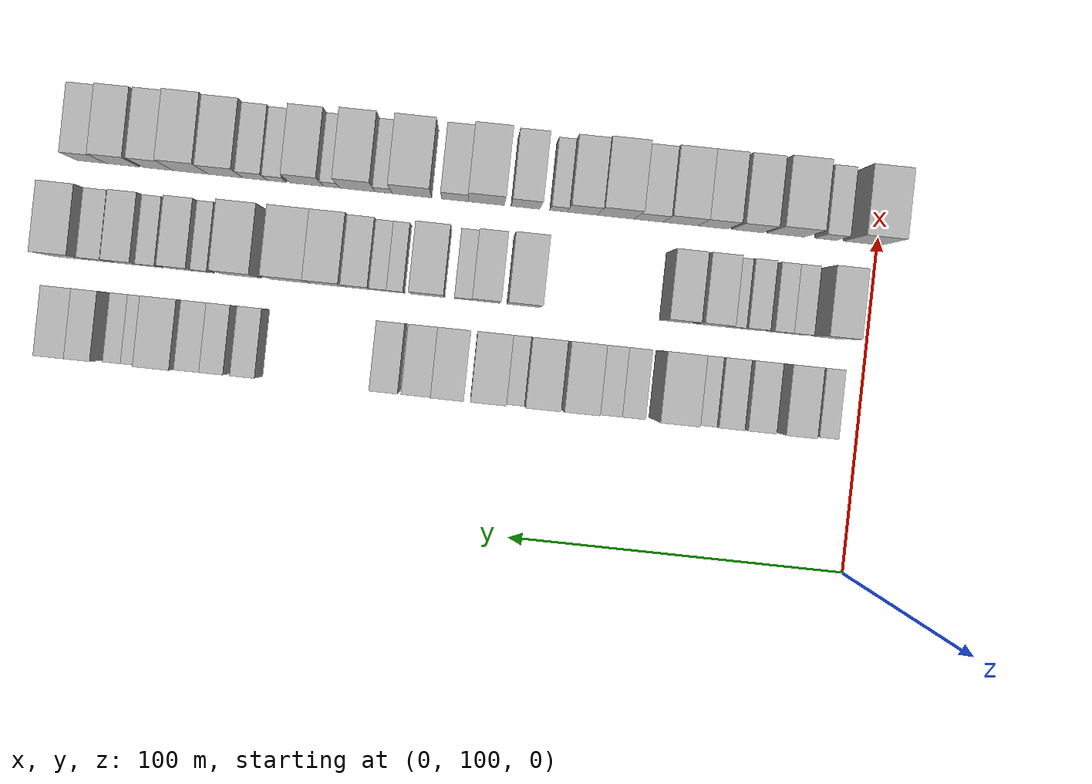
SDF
<sdf version="1.6">
 <world name="default">
  <model name="building_51">
   <static>1</static>
   <pose>50.0000 111.6134 0 0.000000 0.000000 0.000000</pose>
   <link name="link">
    <pose>0 0 6.00 0 0 0</pose>
    <collision name="collision"><geometry><box><size>20.0000 5.5561 12.0000</size></box></geometry></collision>
    <visual name="visual">
     <cast_shadows>0</cast_shadows>
     <geometry><box><size>20.0000 5.5561 12.0000</size></box></geometry>
     <material>
      <script>
       <uri>model://HANNAS_wall/materials/scripts</uri>
       <uri>model://HANNAS_wall/materials/textures</uri>
       <name>vrc/HANNAS_wall</name>
      </script>
     </material>
    </visual>
   </link>
  </model>
  <model name="building_52">
   <static>1</static>
   <pose>50.0000 121.8254 0 0.000000 0.000000 0.000000</pose>
   <link name="link">
    <pose>0 0 10.50 0 0 0</pose>
    <collision name="collision"><geometry><box><size>20.0000 8.8678 21.0000</size></box></geometry></collision>
    <visual name="visual">
     <cast_shadows>0</cast_shadows>
     <geometry><box><size>20.0000 8.8678 21.0000</size></box></geometry>
     <material>
      <script>
       <uri>model://HANNAS_wall/materials/scripts</uri>
       <uri>model://HANNAS_wall/materials/textures</uri>
       <name>vrc/HANNAS_wall</name>
      </script>
     </material>
    </visual>
   </link>
  </model>
  <model name="building_53">
   <static>1</static>
   <pose>50.0000 132.2861 0 0.000000 0.000000 0.000000</pose>
   <link name="link">
    <pose>0 0 9.00 0 0 0</pose>
    <collision name="collision"><geometry><box><size>20.0000 8.0538 18.0000</size></box></geometry></collision>
    <visual name="visual">
     <cast_shadows>0</cast_shadows>
     <geometry><box><size>20.0000 8.0538 18.0000</size></box></geometry>
     <material>
      <script>
       <uri>model://HANNAS_wall/materials/scripts</uri>
       <uri>model://HANNAS_wall/materials/textures</uri>
       <name>vrc/HANNAS_wall</name>
      </script>
     </material>
    </visual>
   </link>
  </model>
  <model name="building_54">
   <static>1</static>
   <pose>50.0000 140.9783 0 0.000000 0.000000 0.000000</pose>
   <link name="link">
    <pose>0 0 9.00 0 0 0</pose>
    <collision name="collision"><geometry><box><size>20.0000 7.3305 18.0000</size></box></geometry></collision>
    <visual name="visual">
     <cast_shadows>0</cast_shadows>
     <geometry><box><size>20.0000 7.3305 18.0000</size></box></geometry>
     <material>
      <script>
       <uri>model://HANNAS_wall/materials/scripts</uri>
       <uri>model://HANNAS_wall/materials/textures</uri>
       <name>vrc/HANNAS_wall</name>
      </script>
     </material>
    </visual>
   </link>
  </model>
  <model name="building_55">
   <static>1</static>
   <pose>50.0000 147.8227 0 0.000000 0.000000 0.000000</pose>
   <link name="link">
    <pose>0 0 7.50 0 0 0</pose>
    <collision name="collision"><geometry><box><size>20.0000 6.3583 15.0000</size></box></geometry></collision>
    <visual name="visual">
     <cast_shadows>0</cast_shadows>
     <geometry><box><size>20.0000 6.3583 15.0000</size></box></geometry>
     <material>
      <script>
       <uri>model://HANNAS_wall/materials/scripts</uri>
       <uri>model://HANNAS_wall/materials/textures</uri>
       <name>vrc/HANNAS_wall</name>
      </script>
     </material>
    </visual>
   </link>
  </model>
  <model name="building_56">
   <static>1</static>
   <pose>50.0000 156.5805 0 0.000000 0.000000 0.000000</pose>
   <link name="link">
    <pose>0 0 12.00 0 0 0</pose>
    <collision name="collision"><geometry><box><size>20.0000 11.1573 24.0000</size></box></geometry></collision>
    <visual name="visual">
     <cast_shadows>0</cast_shadows>
     <geometry><box><size>20.0000 11.1573 24.0000</size></box></geometry>
     <material>
      <script>
       <uri>model://HANNAS_wall/materials/scripts</uri>
       <uri>model://HANNAS_wall/materials/textures</uri>
       <name>vrc/HANNAS_wall</name>
      </script>
     </material>
    </visual>
   </link>
  </model>
  <model name="building_57">
   <static>1</static>
   <pose>50.0000 168.4880 0 0.000000 0.000000 0.000000</pose>
   <link name="link">
    <pose>0 0 7.50 0 0 0</pose>
    <collision name="collision"><geometry><box><size>20.0000 6.6577 15.0000</size></box></geometry></collision>
    <visual name="visual">
     <cast_shadows>0</cast_shadows>
     <geometry><box><size>20.0000 6.6577 15.0000</size></box></geometry>
     <material>
      <script>
       <uri>model://HANNAS_wall/materials/scripts</uri>
       <uri>model://HANNAS_wall/materials/textures</uri>
       <name>vrc/HANNAS_wall</name>
      </script>
     </material>
    </visual>
   </link>
  </model>
  <model name="building_58">
   <static>1</static>
   <pose>50.0000 175.2801 0 0.000000 0.000000 0.000000</pose>
   <link name="link">
    <pose>0 0 7.50 0 0 0</pose>
    <collision name="collision"><geometry><box><size>20.0000 6.9265 15.0000</size></box></geometry></collision>
    <visual name="visual">
     <cast_shadows>0</cast_shadows>
     <geometry><box><size>20.0000 6.9265 15.0000</size></box></geometry>
     <material>
      <script>
       <uri>model://HANNAS_wall/materials/scripts</uri>
       <uri>model://HANNAS_wall/materials/textures</uri>
       <name>vrc/HANNAS_wall</name>
      </script>
     </material>
    </visual>
   </link>
  </model>
  <model name="building_59">
   <static>1</static>
   <pose>50.0000 183.7782 0 0.000000 0.000000 0.000000</pose>
   <link name="link">
    <pose>0 0 10.50 0 0 0</pose>
    <collision name="collision"><geometry><box><size>20.0000 10.0697 21.0000</size></box></geometry></collision>
    <visual name="visual">
     <cast_shadows>0</cast_shadows>
     <geometry><box><size>20.0000 10.0697 21.0000</size></box></geometry>
     <material>
      <script>
       <uri>model://HANNAS_wall/materials/scripts</uri>
       <uri>model://HANNAS_wall/materials/textures</uri>
       <name>vrc/HANNAS_wall</name>
      </script>
     </material>
    </visual>
   </link>
  </model>
  <model name="building_60">
   <static>1</static>
   <pose>50.0000 194.8084 0 0.000000 0.000000 0.000000</pose>
   <link name="link">
    <pose>0 0 10.50 0 0 0</pose>
    <collision name="collision"><geometry><box><size>20.0000 9.9906 21.0000</size></box></geometry></collision>
    <visual name="visual">
     <cast_shadows>0</cast_shadows>
     <geometry><box><size>20.0000 9.9906 21.0000</size></box></geometry>
     <material>
      <script>
       <uri>model://HANNAS_wall/materials/scripts</uri>
       <uri>model://HANNAS_wall/materials/textures</uri>
       <name>vrc/HANNAS_wall</name>
      </script>
     </material>
    </visual>
   </link>
  </model>
  <model name="building_61">
   <static>1</static>
   <pose>50.0000 202.5305 0 0.000000 0.000000 0.000000</pose>
   <link name="link">
    <pose>0 0 6.00 0 0 0</pose>
    <collision name="collision"><geometry><box><size>20.0000 5.4536 12.0000</size></box></geometry></collision>
    <visual name="visual">
     <cast_shadows>0</cast_shadows>
     <geometry><box><size>20.0000 5.4536 12.0000</size></box></geometry>
     <material>
      <script>
       <uri>model://HANNAS_wall/materials/scripts</uri>
       <uri>model://HANNAS_wall/materials/textures</uri>
       <name>vrc/HANNAS_wall</name>
      </script>
     </material>
    </visual>
   </link>
  </model>
  <model name="building_62">
   <static>1</static>
   <pose>50.0000 210.3117 0 0.000000 0.000000 0.000000</pose>
   <link name="link">
    <pose>0 0 10.50 0 0 0</pose>
    <collision name="collision"><geometry><box><size>20.0000 10.1088 21.0000</size></box></geometry></collision>
    <visual name="visual">
     <cast_shadows>0</cast_shadows>
     <geometry><box><size>20.0000 10.1088 21.0000</size></box></geometry>
     <material>
      <script>
       <uri>model://HANNAS_wall/materials/scripts</uri>
       <uri>model://HANNAS_wall/materials/textures</uri>
       <name>vrc/HANNAS_wall</name>
      </script>
     </material>
    </visual>
   </link>
  </model>
  <model name="building_63">
   <static>1</static>
   <pose>50.0000 222.0658 0 0.000000 0.000000 0.000000</pose>
   <link name="link">
    <pose>0 0 10.50 0 0 0</pose>
    <collision name="collision"><geometry><box><size>20.0000 9.3994 21.0000</size></box></geometry></collision>
    <visual name="visual">
     <cast_shadows>0</cast_shadows>
     <geometry><box><size>20.0000 9.3994 21.0000</size></box></geometry>
     <material>
      <script>
       <uri>model://HANNAS_wall/materials/scripts</uri>
       <uri>model://HANNAS_wall/materials/textures</uri>
       <name>vrc/HANNAS_wall</name>
      </script>
     </material>
    </visual>
   </link>
  </model>
  <model name="building_64">
   <static>1</static>
   <pose>50.0000 230.9824 0 0.000000 0.000000 0.000000</pose>
   <link name="link">
    <pose>0 0 9.00 0 0 0</pose>
    <collision name="collision"><geometry><box><size>20.0000 8.4338 18.0000</size></box></geometry></collision>
    <visual name="visual">
     <cast_shadows>0</cast_shadows>
     <geometry><box><size>20.0000 8.4338 18.0000</size></box></geometry>
     <material>
      <script>
       <uri>model://HANNAS_wall/materials/scripts</uri>
       <uri>model://HANNAS_wall/materials/textures</uri>
       <name>vrc/HANNAS_wall</name>
      </script>
     </material>
    </visual>
   </link>
  </model>
  <model name="building_65">
   <static>1</static>
   <pose>50.0000 240.2731 0 0.000000 0.000000 0.000000</pose>
   <link name="link">
    <pose>0 0 9.00 0 0 0</pose>
    <collision name="collision"><geometry><box><size>20.0000 8.1475 18.0000</size></box></geometry></collision>
    <visual name="visual">
     <cast_shadows>0</cast_shadows>
     <geometry><box><size>20.0000 8.1475 18.0000</size></box></geometry>
     <material>
      <script>
       <uri>model://HANNAS_wall/materials/scripts</uri>
       <uri>model://HANNAS_wall/materials/textures</uri>
       <name>vrc/HANNAS_wall</name>
      </script>
     </material>
    </visual>
   </link>
  </model>
  <model name="building_66">
   <static>1</static>
   <pose>50.0000 280.9391 0 0.000000 0.000000 0.000000</pose>
   <link name="link">
    <pose>0 0 7.50 0 0 0</pose>
    <collision name="collision"><geometry><box><size>20.0000 7.0615 15.0000</size></box></geometry></collision>
    <visual name="visual">
     <cast_shadows>0</cast_shadows>
     <geometry><box><size>20.0000 7.0615 15.0000</size></box></geometry>
     <material>
      <script>
       <uri>model://HANNAS_wall/materials/scripts</uri>
       <uri>model://HANNAS_wall/materials/textures</uri>
       <name>vrc/HANNAS_wall</name>
      </script>
     </material>
    </visual>
   </link>
  </model>
  <model name="building_67">
   <static>1</static>
   <pose>50.0000 289.9208 0 0.000000 0.000000 0.000000</pose>
   <link name="link">
    <pose>0 0 7.50 0 0 0</pose>
    <collision name="collision"><geometry><box><size>20.0000 6.9018 15.0000</size></box></geometry></collision>
    <visual name="visual">
     <cast_shadows>0</cast_shadows>
     <geometry><box><size>20.0000 6.9018 15.0000</size></box></geometry>
     <material>
      <script>
       <uri>model://HANNAS_wall/materials/scripts</uri>
       <uri>model://HANNAS_wall/materials/textures</uri>
       <name>vrc/HANNAS_wall</name>
      </script>
     </material>
    </visual>
   </link>
  </model>
  <model name="building_68">
   <static>1</static>
   <pose>50.0000 296.9847 0 0.000000 0.000000 0.000000</pose>
   <link name="link">
    <pose>0 0 7.50 0 0 0</pose>
    <collision name="collision"><geometry><box><size>20.0000 7.2260 15.0000</size></box></geometry></collision>
    <visual name="visual">
     <cast_shadows>0</cast_shadows>
     <geometry><box><size>20.0000 7.2260 15.0000</size></box></geometry>
     <material>
      <script>
       <uri>model://HANNAS_wall/materials/scripts</uri>
       <uri>model://HANNAS_wall/materials/textures</uri>
       <name>vrc/HANNAS_wall</name>
      </script>
     </material>
    </visual>
   </link>
  </model>
  <model name="building_69">
   <static>1</static>
   <pose>50.0000 305.7222 0 0.000000 0.000000 0.000000</pose>
   <link name="link">
    <pose>0 0 10.50 0 0 0</pose>
    <collision name="collision"><geometry><box><size>20.0000 10.2491 21.0000</size></box></geometry></collision>
    <visual name="visual">
     <cast_shadows>0</cast_shadows>
     <geometry><box><size>20.0000 10.2491 21.0000</size></box></geometry>
     <material>
      <script>
       <uri>model://HANNAS_wall/materials/scripts</uri>
       <uri>model://HANNAS_wall/materials/textures</uri>
       <name>vrc/HANNAS_wall</name>
      </script>
     </material>
    </visual>
   </link>
  </model>
  <model name="building_70">
   <static>1</static>
   <pose>50.0000 313.7695 0 0.000000 0.000000 0.000000</pose>
   <link name="link">
    <pose>0 0 6.00 0 0 0</pose>
    <collision name="collision"><geometry><box><size>20.0000 5.8454 12.0000</size></box></geometry></collision>
    <visual name="visual">
     <cast_shadows>0</cast_shadows>
     <geometry><box><size>20.0000 5.8454 12.0000</size></box></geometry>
     <material>
      <script>
       <uri>model://HANNAS_wall/materials/scripts</uri>
       <uri>model://HANNAS_wall/materials/textures</uri>
       <name>vrc/HANNAS_wall</name>
      </script>
     </material>
    </visual>
   </link>
  </model>
  <model name="building_71">
   <static>1</static>
   <pose>50.0000 319.2532 0 0.000000 0.000000 0.000000</pose>
   <link name="link">
    <pose>0 0 6.00 0 0 0</pose>
    <collision name="collision"><geometry><box><size>20.0000 5.1220 12.0000</size></box></geometry></collision>
    <visual name="visual">
     <cast_shadows>0</cast_shadows>
     <geometry><box><size>20.0000 5.1220 12.0000</size></box></geometry>
     <material>
      <script>
       <uri>model://HANNAS_wall/materials/scripts</uri>
       <uri>model://HANNAS_wall/materials/textures</uri>
       <name>vrc/HANNAS_wall</name>
      </script>
     </material>
    </visual>
   </link>
  </model>
  <model name="building_72">
   <static>1</static>
   <pose>50.0000 327.5269 0 0.000000 0.000000 0.000000</pose>
   <link name="link">
    <pose>0 0 9.00 0 0 0</pose>
    <collision name="collision"><geometry><box><size>20.0000 7.4254 18.0000</size></box></geometry></collision>
    <visual name="visual">
     <cast_shadows>0</cast_shadows>
     <geometry><box><size>20.0000 7.4254 18.0000</size></box></geometry>
     <material>
      <script>
       <uri>model://HANNAS_wall/materials/scripts</uri>
       <uri>model://HANNAS_wall/materials/textures</uri>
       <name>vrc/HANNAS_wall</name>
      </script>
     </material>
    </visual>
   </link>
  </model>
  <model name="building_73">
   <static>1</static>
   <pose>50.0000 335.5805 0 0.000000 0.000000 0.000000</pose>
   <link name="link">
    <pose>0 0 9.00 0 0 0</pose>
    <collision name="collision"><geometry><box><size>20.0000 8.6818 18.0000</size></box></geometry></collision>
    <visual name="visual">
     <cast_shadows>0</cast_shadows>
     <geometry><box><size>20.0000 8.6818 18.0000</size></box></geometry>
     <material>
      <script>
       <uri>model://HANNAS_wall/materials/scripts</uri>
       <uri>model://HANNAS_wall/materials/textures</uri>
       <name>vrc/HANNAS_wall</name>
      </script>
     </material>
    </visual>
   </link>
  </model>
  <model name="building_121">
   <static>1</static>
   <pose>79.0000 112.3462 0 0.000000 0.000000 0.000000</pose>
   <link name="link">
    <pose>0 0 10.50 0 0 0</pose>
    <collision name="collision"><geometry><box><size>20.0000 9.1870 21.0000</size></box></geometry></collision>
    <visual name="visual">
     <cast_shadows>0</cast_shadows>
     <geometry><box><size>20.0000 9.1870 21.0000</size></box></geometry>
     <material>
      <script>
       <uri>model://HANNAS_wall/materials/scripts</uri>
       <uri>model://HANNAS_wall/materials/textures</uri>
       <name>vrc/HANNAS_wall</name>
      </script>
     </material>
    </visual>
   </link>
  </model>
  <model name="building_122">
   <static>1</static>
   <pose>79.0000 121.8624 0 0.000000 0.000000 0.000000</pose>
   <link name="link">
    <pose>0 0 6.00 0 0 0</pose>
    <collision name="collision"><geometry><box><size>20.0000 5.8455 12.0000</size></box></geometry></collision>
    <visual name="visual">
     <cast_shadows>0</cast_shadows>
     <geometry><box><size>20.0000 5.8455 12.0000</size></box></geometry>
     <material>
      <script>
       <uri>model://HANNAS_wall/materials/scripts</uri>
       <uri>model://HANNAS_wall/materials/textures</uri>
       <name>vrc/HANNAS_wall</name>
      </script>
     </material>
    </visual>
   </link>
  </model>
  <model name="building_123">
   <static>1</static>
   <pose>79.0000 127.5414 0 0.000000 0.000000 0.000000</pose>
   <link name="link">
    <pose>0 0 6.00 0 0 0</pose>
    <collision name="collision"><geometry><box><size>20.0000 5.5125 12.0000</size></box></geometry></collision>
    <visual name="visual">
     <cast_shadows>0</cast_shadows>
     <geometry><box><size>20.0000 5.5125 12.0000</size></box></geometry>
     <material>
      <script>
       <uri>model://HANNAS_wall/materials/scripts</uri>
       <uri>model://HANNAS_wall/materials/textures</uri>
       <name>vrc/HANNAS_wall</name>
      </script>
     </material>
    </visual>
   </link>
  </model>
  <model name="building_124">
   <static>1</static>
   <pose>79.0000 135.4292 0 0.000000 0.000000 0.000000</pose>
   <link name="link">
    <pose>0 0 7.50 0 0 0</pose>
    <collision name="collision"><geometry><box><size>20.0000 6.2630 15.0000</size></box></geometry></collision>
    <visual name="visual">
     <cast_shadows>0</cast_shadows>
     <geometry><box><size>20.0000 6.2630 15.0000</size></box></geometry>
     <material>
      <script>
       <uri>model://HANNAS_wall/materials/scripts</uri>
       <uri>model://HANNAS_wall/materials/textures</uri>
       <name>vrc/HANNAS_wall</name>
      </script>
     </material>
    </visual>
   </link>
  </model>
  <model name="building_125">
   <static>1</static>
   <pose>79.0000 141.0356 0 0.000000 0.000000 0.000000</pose>
   <link name="link">
    <pose>0 0 6.00 0 0 0</pose>
    <collision name="collision"><geometry><box><size>20.0000 4.9498 12.0000</size></box></geometry></collision>
    <visual name="visual">
     <cast_shadows>0</cast_shadows>
     <geometry><box><size>20.0000 4.9498 12.0000</size></box></geometry>
     <material>
      <script>
       <uri>model://HANNAS_wall/materials/scripts</uri>
       <uri>model://HANNAS_wall/materials/textures</uri>
       <name>vrc/HANNAS_wall</name>
      </script>
     </material>
    </visual>
   </link>
  </model>
  <model name="building_126">
   <static>1</static>
   <pose>79.0000 147.7983 0 0.000000 0.000000 0.000000</pose>
   <link name="link">
    <pose>0 0 10.50 0 0 0</pose>
    <collision name="collision"><geometry><box><size>20.0000 8.5755 21.0000</size></box></geometry></collision>
    <visual name="visual">
     <cast_shadows>0</cast_shadows>
     <geometry><box><size>20.0000 8.5755 21.0000</size></box></geometry>
     <material>
      <script>
       <uri>model://HANNAS_wall/materials/scripts</uri>
       <uri>model://HANNAS_wall/materials/textures</uri>
       <name>vrc/HANNAS_wall</name>
      </script>
     </material>
    </visual>
   </link>
  </model>
  <model name="building_127">
   <static>1</static>
   <pose>79.0000 157.5935 0 0.000000 0.000000 0.000000</pose>
   <link name="link">
    <pose>0 0 10.50 0 0 0</pose>
    <collision name="collision"><geometry><box><size>20.0000 9.0149 21.0000</size></box></geometry></collision>
    <visual name="visual">
     <cast_shadows>0</cast_shadows>
     <geometry><box><size>20.0000 9.0149 21.0000</size></box></geometry>
     <material>
      <script>
       <uri>model://HANNAS_wall/materials/scripts</uri>
       <uri>model://HANNAS_wall/materials/textures</uri>
       <name>vrc/HANNAS_wall</name>
      </script>
     </material>
    </visual>
   </link>
  </model>
  <model name="building_128">
   <static>1</static>
   <pose>79.0000 202.7211 0 0.000000 0.000000 0.000000</pose>
   <link name="link">
    <pose>0 0 10.50 0 0 0</pose>
    <collision name="collision"><geometry><box><size>20.0000 9.7468 21.0000</size></box></geometry></collision>
    <visual name="visual">
     <cast_shadows>0</cast_shadows>
     <geometry><box><size>20.0000 9.7468 21.0000</size></box></geometry>
     <material>
      <script>
       <uri>model://HANNAS_wall/materials/scripts</uri>
       <uri>model://HANNAS_wall/materials/textures</uri>
       <name>vrc/HANNAS_wall</name>
      </script>
     </material>
    </visual>
   </link>
  </model>
  <model name="building_129">
   <static>1</static>
   <pose>79.0000 213.7651 0 0.000000 0.000000 0.000000</pose>
   <link name="link">
    <pose>0 0 9.00 0 0 0</pose>
    <collision name="collision"><geometry><box><size>20.0000 8.3413 18.0000</size></box></geometry></collision>
    <visual name="visual">
     <cast_shadows>0</cast_shadows>
     <geometry><box><size>20.0000 8.3413 18.0000</size></box></geometry>
     <material>
      <script>
       <uri>model://HANNAS_wall/materials/scripts</uri>
       <uri>model://HANNAS_wall/materials/textures</uri>
       <name>vrc/HANNAS_wall</name>
      </script>
     </material>
    </visual>
   </link>
  </model>
  <model name="building_130">
   <static>1</static>
   <pose>79.0000 220.5174 0 0.000000 0.000000 0.000000</pose>
   <link name="link">
    <pose>0 0 6.00 0 0 0</pose>
    <collision name="collision"><geometry><box><size>20.0000 5.1635 12.0000</size></box></geometry></collision>
    <visual name="visual">
     <cast_shadows>0</cast_shadows>
     <geometry><box><size>20.0000 5.1635 12.0000</size></box></geometry>
     <material>
      <script>
       <uri>model://HANNAS_wall/materials/scripts</uri>
       <uri>model://HANNAS_wall/materials/textures</uri>
       <name>vrc/HANNAS_wall</name>
      </script>
     </material>
    </visual>
   </link>
  </model>
  <model name="building_131">
   <static>1</static>
   <pose>79.0000 231.0693 0 0.000000 0.000000 0.000000</pose>
   <link name="link">
    <pose>0 0 10.50 0 0 0</pose>
    <collision name="collision"><geometry><box><size>20.0000 9.9403 21.0000</size></box></geometry></collision>
    <visual name="visual">
     <cast_shadows>0</cast_shadows>
     <geometry><box><size>20.0000 9.9403 21.0000</size></box></geometry>
     <material>
      <script>
       <uri>model://HANNAS_wall/materials/scripts</uri>
       <uri>model://HANNAS_wall/materials/textures</uri>
       <name>vrc/HANNAS_wall</name>
      </script>
     </material>
    </visual>
   </link>
  </model>
  <model name="building_132">
   <static>1</static>
   <pose>79.0000 240.4422 0 0.000000 0.000000 0.000000</pose>
   <link name="link">
    <pose>0 0 6.00 0 0 0</pose>
    <collision name="collision"><geometry><box><size>20.0000 4.8054 12.0000</size></box></geometry></collision>
    <visual name="visual">
     <cast_shadows>0</cast_shadows>
     <geometry><box><size>20.0000 4.8054 12.0000</size></box></geometry>
     <material>
      <script>
       <uri>model://HANNAS_wall/materials/scripts</uri>
       <uri>model://HANNAS_wall/materials/textures</uri>
       <name>vrc/HANNAS_wall</name>
      </script>
     </material>
    </visual>
   </link>
  </model>
  <model name="building_133">
   <static>1</static>
   <pose>79.0000 245.3740 0 0.000000 0.000000 0.000000</pose>
   <link name="link">
    <pose>0 0 6.00 0 0 0</pose>
    <collision name="collision"><geometry><box><size>20.0000 5.0583 12.0000</size></box></geometry></collision>
    <visual name="visual">
     <cast_shadows>0</cast_shadows>
     <geometry><box><size>20.0000 5.0583 12.0000</size></box></geometry>
     <material>
      <script>
       <uri>model://HANNAS_wall/materials/scripts</uri>
       <uri>model://HANNAS_wall/materials/textures</uri>
       <name>vrc/HANNAS_wall</name>
      </script>
     </material>
    </visual>
   </link>
  </model>
  <model name="building_134">
   <static>1</static>
   <pose>79.0000 251.7770 0 0.000000 0.000000 0.000000</pose>
   <link name="link">
    <pose>0 0 9.00 0 0 0</pose>
    <collision name="collision"><geometry><box><size>20.0000 7.7476 18.0000</size></box></geometry></collision>
    <visual name="visual">
     <cast_shadows>0</cast_shadows>
     <geometry><box><size>20.0000 7.7476 18.0000</size></box></geometry>
     <material>
      <script>
       <uri>model://HANNAS_wall/materials/scripts</uri>
       <uri>model://HANNAS_wall/materials/textures</uri>
       <name>vrc/HANNAS_wall</name>
      </script>
     </material>
    </visual>
   </link>
  </model>
  <model name="building_135">
   <static>1</static>
   <pose>79.0000 260.7111 0 0.000000 0.000000 0.000000</pose>
   <link name="link">
    <pose>0 0 12.00 0 0 0</pose>
    <collision name="collision"><geometry><box><size>20.0000 10.1206 24.0000</size></box></geometry></collision>
    <visual name="visual">
     <cast_shadows>0</cast_shadows>
     <geometry><box><size>20.0000 10.1206 24.0000</size></box></geometry>
     <material>
      <script>
       <uri>model://HANNAS_wall/materials/scripts</uri>
       <uri>model://HANNAS_wall/materials/textures</uri>
       <name>vrc/HANNAS_wall</name>
      </script>
     </material>
    </visual>
   </link>
  </model>
  <model name="building_136">
   <static>1</static>
   <pose>79.0000 271.6966 0 0.000000 0.000000 0.000000</pose>
   <link name="link">
    <pose>0 0 12.00 0 0 0</pose>
    <collision name="collision"><geometry><box><size>20.0000 11.8505 24.0000</size></box></geometry></collision>
    <visual name="visual">
     <cast_shadows>0</cast_shadows>
     <geometry><box><size>20.0000 11.8505 24.0000</size></box></geometry>
     <material>
      <script>
       <uri>model://HANNAS_wall/materials/scripts</uri>
       <uri>model://HANNAS_wall/materials/textures</uri>
       <name>vrc/HANNAS_wall</name>
      </script>
     </material>
    </visual>
   </link>
  </model>
  <model name="building_137">
   <static>1</static>
   <pose>79.0000 286.2251 0 0.000000 0.000000 0.000000</pose>
   <link name="link">
    <pose>0 0 12.00 0 0 0</pose>
    <collision name="collision"><geometry><box><size>20.0000 11.2065 24.0000</size></box></geometry></collision>
    <visual name="visual">
     <cast_shadows>0</cast_shadows>
     <geometry><box><size>20.0000 11.2065 24.0000</size></box></geometry>
     <material>
      <script>
       <uri>model://HANNAS_wall/materials/scripts</uri>
       <uri>model://HANNAS_wall/materials/textures</uri>
       <name>vrc/HANNAS_wall</name>
      </script>
     </material>
    </visual>
   </link>
  </model>
  <model name="building_138">
   <static>1</static>
   <pose>79.0000 297.2310 0 0.000000 0.000000 0.000000</pose>
   <link name="link">
    <pose>0 0 6.00 0 0 0</pose>
    <collision name="collision"><geometry><box><size>20.0000 4.8053 12.0000</size></box></geometry></collision>
    <visual name="visual">
     <cast_shadows>0</cast_shadows>
     <geometry><box><size>20.0000 4.8053 12.0000</size></box></geometry>
     <material>
      <script>
       <uri>model://HANNAS_wall/materials/scripts</uri>
       <uri>model://HANNAS_wall/materials/textures</uri>
       <name>vrc/HANNAS_wall</name>
      </script>
     </material>
    </visual>
   </link>
  </model>
  <model name="building_139">
   <static>1</static>
   <pose>79.0000 303.8047 0 0.000000 0.000000 0.000000</pose>
   <link name="link">
    <pose>0 0 9.00 0 0 0</pose>
    <collision name="collision"><geometry><box><size>20.0000 8.3420 18.0000</size></box></geometry></collision>
    <visual name="visual">
     <cast_shadows>0</cast_shadows>
     <geometry><box><size>20.0000 8.3420 18.0000</size></box></geometry>
     <material>
      <script>
       <uri>model://HANNAS_wall/materials/scripts</uri>
       <uri>model://HANNAS_wall/materials/textures</uri>
       <name>vrc/HANNAS_wall</name>
      </script>
     </material>
    </visual>
   </link>
  </model>
  <model name="building_140">
   <static>1</static>
   <pose>79.0000 312.7901 0 0.000000 0.000000 0.000000</pose>
   <link name="link">
    <pose>0 0 6.00 0 0 0</pose>
    <collision name="collision"><geometry><box><size>20.0000 5.6288 12.0000</size></box></geometry></collision>
    <visual name="visual">
     <cast_shadows>0</cast_shadows>
     <geometry><box><size>20.0000 5.6288 12.0000</size></box></geometry>
     <material>
      <script>
       <uri>model://HANNAS_wall/materials/scripts</uri>
       <uri>model://HANNAS_wall/materials/textures</uri>
       <name>vrc/HANNAS_wall</name>
      </script>
     </material>
    </visual>
   </link>
  </model>
  <model name="building_141">
   <static>1</static>
   <pose>79.0000 319.7751 0 0.000000 0.000000 0.000000</pose>
   <link name="link">
    <pose>0 0 9.00 0 0 0</pose>
    <collision name="collision"><geometry><box><size>20.0000 8.3412 18.0000</size></box></geometry></collision>
    <visual name="visual">
     <cast_shadows>0</cast_shadows>
     <geometry><box><size>20.0000 8.3412 18.0000</size></box></geometry>
     <material>
      <script>
       <uri>model://HANNAS_wall/materials/scripts</uri>
       <uri>model://HANNAS_wall/materials/textures</uri>
       <name>vrc/HANNAS_wall</name>
      </script>
     </material>
    </visual>
   </link>
  </model>
  <model name="building_142">
   <static>1</static>
   <pose>79.0000 328.3078 0 0.000000 0.000000 0.000000</pose>
   <link name="link">
    <pose>0 0 7.50 0 0 0</pose>
    <collision name="collision"><geometry><box><size>20.0000 6.7243 15.0000</size></box></geometry></collision>
    <visual name="visual">
     <cast_shadows>0</cast_shadows>
     <geometry><box><size>20.0000 6.7243 15.0000</size></box></geometry>
     <material>
      <script>
       <uri>model://HANNAS_wall/materials/scripts</uri>
       <uri>model://HANNAS_wall/materials/textures</uri>
       <name>vrc/HANNAS_wall</name>
      </script>
     </material>
    </visual>
   </link>
  </model>
  <model name="building_143">
   <static>1</static>
   <pose>79.0000 336.9838 0 0.000000 0.000000 0.000000</pose>
   <link name="link">
    <pose>0 0 12.00 0 0 0</pose>
    <collision name="collision"><geometry><box><size>20.0000 10.6277 24.0000</size></box></geometry></collision>
    <visual name="visual">
     <cast_shadows>0</cast_shadows>
     <geometry><box><size>20.0000 10.6277 24.0000</size></box></geometry>
     <material>
      <script>
       <uri>model://HANNAS_wall/materials/scripts</uri>
       <uri>model://HANNAS_wall/materials/textures</uri>
       <name>vrc/HANNAS_wall</name>
      </script>
     </material>
    </visual>
   </link>
  </model>
  <model name="building_187">
   <static>1</static>
   <pose>108.0000 104.6350 0 0.000000 0.000000 0.000000</pose>
   <link name="link">
    <pose>0 0 12.00 0 0 0</pose>
    <collision name="collision"><geometry><box><size>20.0000 11.4548 24.0000</size></box></geometry></collision>
    <visual name="visual">
     <cast_shadows>0</cast_shadows>
     <geometry><box><size>20.0000 11.4548 24.0000</size></box></geometry>
     <material>
      <script>
       <uri>model://HANNAS_wall/materials/scripts</uri>
       <uri>model://HANNAS_wall/materials/textures</uri>
       <name>vrc/HANNAS_wall</name>
      </script>
     </material>
    </visual>
   </link>
  </model>
  <model name="building_188">
   <static>1</static>
   <pose>108.0000 115.6081 0 0.000000 0.000000 0.000000</pose>
   <link name="link">
    <pose>0 0 7.50 0 0 0</pose>
    <collision name="collision"><geometry><box><size>20.0000 6.4915 15.0000</size></box></geometry></collision>
    <visual name="visual">
     <cast_shadows>0</cast_shadows>
     <geometry><box><size>20.0000 6.4915 15.0000</size></box></geometry>
     <material>
      <script>
       <uri>model://HANNAS_wall/materials/scripts</uri>
       <uri>model://HANNAS_wall/materials/textures</uri>
       <name>vrc/HANNAS_wall</name>
      </script>
     </material>
    </visual>
   </link>
  </model>
  <model name="building_189">
   <static>1</static>
   <pose>108.0000 127.5000 0 0.000000 0.000000 0.000000</pose>
   <link name="link">
    <pose>0 0 12.00 0 0 0</pose>
    <collision name="collision"><geometry><box><size>20.0000 11.2924 24.0000</size></box></geometry></collision>
    <visual name="visual">
     <cast_shadows>0</cast_shadows>
     <geometry><box><size>20.0000 11.2924 24.0000</size></box></geometry>
     <material>
      <script>
       <uri>model://HANNAS_wall/materials/scripts</uri>
       <uri>model://HANNAS_wall/materials/textures</uri>
       <name>vrc/HANNAS_wall</name>
      </script>
     </material>
    </visual>
   </link>
  </model>
  <model name="building_190">
   <static>1</static>
   <pose>108.0000 138.8806 0 0.000000 0.000000 0.000000</pose>
   <link name="link">
    <pose>0 0 10.50 0 0 0</pose>
    <collision name="collision"><geometry><box><size>20.0000 9.4687 21.0000</size></box></geometry></collision>
    <visual name="visual">
     <cast_shadows>0</cast_shadows>
     <geometry><box><size>20.0000 9.4687 21.0000</size></box></geometry>
     <material>
      <script>
       <uri>model://HANNAS_wall/materials/scripts</uri>
       <uri>model://HANNAS_wall/materials/textures</uri>
       <name>vrc/HANNAS_wall</name>
      </script>
     </material>
    </visual>
   </link>
  </model>
  <model name="building_191">
   <static>1</static>
   <pose>108.0000 149.2023 0 0.000000 0.000000 0.000000</pose>
   <link name="link">
    <pose>0 0 10.50 0 0 0</pose>
    <collision name="collision"><geometry><box><size>20.0000 9.1748 21.0000</size></box></geometry></collision>
    <visual name="visual">
     <cast_shadows>0</cast_shadows>
     <geometry><box><size>20.0000 9.1748 21.0000</size></box></geometry>
     <material>
      <script>
       <uri>model://HANNAS_wall/materials/scripts</uri>
       <uri>model://HANNAS_wall/materials/textures</uri>
       <name>vrc/HANNAS_wall</name>
      </script>
     </material>
    </visual>
   </link>
  </model>
  <model name="building_192">
   <static>1</static>
   <pose>108.0000 158.9379 0 0.000000 0.000000 0.000000</pose>
   <link name="link">
    <pose>0 0 10.50 0 0 0</pose>
    <collision name="collision"><geometry><box><size>20.0000 10.2965 21.0000</size></box></geometry></collision>
    <visual name="visual">
     <cast_shadows>0</cast_shadows>
     <geometry><box><size>20.0000 10.2965 21.0000</size></box></geometry>
     <material>
      <script>
       <uri>model://HANNAS_wall/materials/scripts</uri>
       <uri>model://HANNAS_wall/materials/textures</uri>
       <name>vrc/HANNAS_wall</name>
      </script>
     </material>
    </visual>
   </link>
  </model>
  <model name="building_193">
   <static>1</static>
   <pose>108.0000 168.3709 0 0.000000 0.000000 0.000000</pose>
   <link name="link">
    <pose>0 0 9.00 0 0 0</pose>
    <collision name="collision"><geometry><box><size>20.0000 8.5695 18.0000</size></box></geometry></collision>
    <visual name="visual">
     <cast_shadows>0</cast_shadows>
     <geometry><box><size>20.0000 8.5695 18.0000</size></box></geometry>
     <material>
      <script>
       <uri>model://HANNAS_wall/materials/scripts</uri>
       <uri>model://HANNAS_wall/materials/textures</uri>
       <name>vrc/HANNAS_wall</name>
      </script>
     </material>
    </visual>
   </link>
  </model>
  <model name="building_194">
   <static>1</static>
   <pose>108.0000 178.1745 0 0.000000 0.000000 0.000000</pose>
   <link name="link">
    <pose>0 0 12.00 0 0 0</pose>
    <collision name="collision"><geometry><box><size>20.0000 11.0377 24.0000</size></box></geometry></collision>
    <visual name="visual">
     <cast_shadows>0</cast_shadows>
     <geometry><box><size>20.0000 11.0377 24.0000</size></box></geometry>
     <material>
      <script>
       <uri>model://HANNAS_wall/materials/scripts</uri>
       <uri>model://HANNAS_wall/materials/textures</uri>
       <name>vrc/HANNAS_wall</name>
      </script>
     </material>
    </visual>
   </link>
  </model>
  <model name="building_195">
   <static>1</static>
   <pose>108.0000 188.2405 0 0.000000 0.000000 0.000000</pose>
   <link name="link">
    <pose>0 0 10.50 0 0 0</pose>
    <collision name="collision"><geometry><box><size>20.0000 9.0944 21.0000</size></box></geometry></collision>
    <visual name="visual">
     <cast_shadows>0</cast_shadows>
     <geometry><box><size>20.0000 9.0944 21.0000</size></box></geometry>
     <material>
      <script>
       <uri>model://HANNAS_wall/materials/scripts</uri>
       <uri>model://HANNAS_wall/materials/textures</uri>
       <name>vrc/HANNAS_wall</name>
      </script>
     </material>
    </visual>
   </link>
  </model>
  <model name="building_196">
   <static>1</static>
   <pose>108.0000 195.3251 0 0.000000 0.000000 0.000000</pose>
   <link name="link">
    <pose>0 0 6.00 0 0 0</pose>
    <collision name="collision"><geometry><box><size>20.0000 5.0747 12.0000</size></box></geometry></collision>
    <visual name="visual">
     <cast_shadows>0</cast_shadows>
     <geometry><box><size>20.0000 5.0747 12.0000</size></box></geometry>
     <material>
      <script>
       <uri>model://HANNAS_wall/materials/scripts</uri>
       <uri>model://HANNAS_wall/materials/textures</uri>
       <name>vrc/HANNAS_wall</name>
      </script>
     </material>
    </visual>
   </link>
  </model>
  <model name="building_197">
   <static>1</static>
   <pose>108.0000 205.1408 0 0.000000 0.000000 0.000000</pose>
   <link name="link">
    <pose>0 0 10.50 0 0 0</pose>
    <collision name="collision"><geometry><box><size>20.0000 8.5567 21.0000</size></box></geometry></collision>
    <visual name="visual">
     <cast_shadows>0</cast_shadows>
     <geometry><box><size>20.0000 8.5567 21.0000</size></box></geometry>
     <material>
      <script>
       <uri>model://HANNAS_wall/materials/scripts</uri>
       <uri>model://HANNAS_wall/materials/textures</uri>
       <name>vrc/HANNAS_wall</name>
      </script>
     </material>
    </visual>
   </link>
  </model>
  <model name="building_198">
   <static>1</static>
   <pose>108.0000 216.7650 0 0.000000 0.000000 0.000000</pose>
   <link name="link">
    <pose>0 0 12.00 0 0 0</pose>
    <collision name="collision"><geometry><box><size>20.0000 10.6918 24.0000</size></box></geometry></collision>
    <visual name="visual">
     <cast_shadows>0</cast_shadows>
     <geometry><box><size>20.0000 10.6918 24.0000</size></box></geometry>
     <material>
      <script>
       <uri>model://HANNAS_wall/materials/scripts</uri>
       <uri>model://HANNAS_wall/materials/textures</uri>
       <name>vrc/HANNAS_wall</name>
      </script>
     </material>
    </visual>
   </link>
  </model>
  <model name="building_199">
   <static>1</static>
   <pose>108.0000 226.0769 0 0.000000 0.000000 0.000000</pose>
   <link name="link">
    <pose>0 0 9.00 0 0 0</pose>
    <collision name="collision"><geometry><box><size>20.0000 7.9320 18.0000</size></box></geometry></collision>
    <visual name="visual">
     <cast_shadows>0</cast_shadows>
     <geometry><box><size>20.0000 7.9320 18.0000</size></box></geometry>
     <material>
      <script>
       <uri>model://HANNAS_wall/materials/scripts</uri>
       <uri>model://HANNAS_wall/materials/textures</uri>
       <name>vrc/HANNAS_wall</name>
      </script>
     </material>
    </visual>
   </link>
  </model>
  <model name="building_200">
   <static>1</static>
   <pose>108.0000 238.9261 0 0.000000 0.000000 0.000000</pose>
   <link name="link">
    <pose>0 0 12.00 0 0 0</pose>
    <collision name="collision"><geometry><box><size>20.0000 11.7665 24.0000</size></box></geometry></collision>
    <visual name="visual">
     <cast_shadows>0</cast_shadows>
     <geometry><box><size>20.0000 11.7665 24.0000</size></box></geometry>
     <material>
      <script>
       <uri>model://HANNAS_wall/materials/scripts</uri>
       <uri>model://HANNAS_wall/materials/textures</uri>
       <name>vrc/HANNAS_wall</name>
      </script>
     </material>
    </visual>
   </link>
  </model>
  <model name="building_201">
   <static>1</static>
   <pose>108.0000 247.3586 0 0.000000 0.000000 0.000000</pose>
   <link name="link">
    <pose>0 0 6.00 0 0 0</pose>
    <collision name="collision"><geometry><box><size>20.0000 5.0985 12.0000</size></box></geometry></collision>
    <visual name="visual">
     <cast_shadows>0</cast_shadows>
     <geometry><box><size>20.0000 5.0985 12.0000</size></box></geometry>
     <material>
      <script>
       <uri>model://HANNAS_wall/materials/scripts</uri>
       <uri>model://HANNAS_wall/materials/textures</uri>
       <name>vrc/HANNAS_wall</name>
      </script>
     </material>
    </visual>
   </link>
  </model>
  <model name="building_202">
   <static>1</static>
   <pose>108.0000 255.1656 0 0.000000 0.000000 0.000000</pose>
   <link name="link">
    <pose>0 0 12.00 0 0 0</pose>
    <collision name="collision"><geometry><box><size>20.0000 10.5154 24.0000</size></box></geometry></collision>
    <visual name="visual">
     <cast_shadows>0</cast_shadows>
     <geometry><box><size>20.0000 10.5154 24.0000</size></box></geometry>
     <material>
      <script>
       <uri>model://HANNAS_wall/materials/scripts</uri>
       <uri>model://HANNAS_wall/materials/textures</uri>
       <name>vrc/HANNAS_wall</name>
      </script>
     </material>
    </visual>
   </link>
  </model>
  <model name="building_203">
   <static>1</static>
   <pose>108.0000 262.8414 0 0.000000 0.000000 0.000000</pose>
   <link name="link">
    <pose>0 0 6.00 0 0 0</pose>
    <collision name="collision"><geometry><box><size>20.0000 4.8362 12.0000</size></box></geometry></collision>
    <visual name="visual">
     <cast_shadows>0</cast_shadows>
     <geometry><box><size>20.0000 4.8362 12.0000</size></box></geometry>
     <material>
      <script>
       <uri>model://HANNAS_wall/materials/scripts</uri>
       <uri>model://HANNAS_wall/materials/textures</uri>
       <name>vrc/HANNAS_wall</name>
      </script>
     </material>
    </visual>
   </link>
  </model>
  <model name="building_204">
   <static>1</static>
   <pose>108.0000 270.2709 0 0.000000 0.000000 0.000000</pose>
   <link name="link">
    <pose>0 0 10.50 0 0 0</pose>
    <collision name="collision"><geometry><box><size>20.0000 10.0229 21.0000</size></box></geometry></collision>
    <visual name="visual">
     <cast_shadows>0</cast_shadows>
     <geometry><box><size>20.0000 10.0229 21.0000</size></box></geometry>
     <material>
      <script>
       <uri>model://HANNAS_wall/materials/scripts</uri>
       <uri>model://HANNAS_wall/materials/textures</uri>
       <name>vrc/HANNAS_wall</name>
      </script>
     </material>
    </visual>
   </link>
  </model>
  <model name="building_205">
   <static>1</static>
   <pose>108.0000 279.1353 0 0.000000 0.000000 0.000000</pose>
   <link name="link">
    <pose>0 0 6.00 0 0 0</pose>
    <collision name="collision"><geometry><box><size>20.0000 5.7059 12.0000</size></box></geometry></collision>
    <visual name="visual">
     <cast_shadows>0</cast_shadows>
     <geometry><box><size>20.0000 5.7059 12.0000</size></box></geometry>
     <material>
      <script>
       <uri>model://HANNAS_wall/materials/scripts</uri>
       <uri>model://HANNAS_wall/materials/textures</uri>
       <name>vrc/HANNAS_wall</name>
      </script>
     </material>
    </visual>
   </link>
  </model>
  <model name="building_206">
   <static>1</static>
   <pose>108.0000 285.6217 0 0.000000 0.000000 0.000000</pose>
   <link name="link">
    <pose>0 0 7.50 0 0 0</pose>
    <collision name="collision"><geometry><box><size>20.0000 7.2670 15.0000</size></box></geometry></collision>
    <visual name="visual">
     <cast_shadows>0</cast_shadows>
     <geometry><box><size>20.0000 7.2670 15.0000</size></box></geometry>
     <material>
      <script>
       <uri>model://HANNAS_wall/materials/scripts</uri>
       <uri>model://HANNAS_wall/materials/textures</uri>
       <name>vrc/HANNAS_wall</name>
      </script>
     </material>
    </visual>
   </link>
  </model>
  <model name="building_207">
   <static>1</static>
   <pose>108.0000 294.4256 0 0.000000 0.000000 0.000000</pose>
   <link name="link">
    <pose>0 0 10.50 0 0 0</pose>
    <collision name="collision"><geometry><box><size>20.0000 10.3407 21.0000</size></box></geometry></collision>
    <visual name="visual">
     <cast_shadows>0</cast_shadows>
     <geometry><box><size>20.0000 10.3407 21.0000</size></box></geometry>
     <material>
      <script>
       <uri>model://HANNAS_wall/materials/scripts</uri>
       <uri>model://HANNAS_wall/materials/textures</uri>
       <name>vrc/HANNAS_wall</name>
      </script>
     </material>
    </visual>
   </link>
  </model>
  <model name="building_208">
   <static>1</static>
   <pose>108.0000 304.8863 0 0.000000 0.000000 0.000000</pose>
   <link name="link">
    <pose>0 0 12.00 0 0 0</pose>
    <collision name="collision"><geometry><box><size>20.0000 10.5808 24.0000</size></box></geometry></collision>
    <visual name="visual">
     <cast_shadows>0</cast_shadows>
     <geometry><box><size>20.0000 10.5808 24.0000</size></box></geometry>
     <material>
      <script>
       <uri>model://HANNAS_wall/materials/scripts</uri>
       <uri>model://HANNAS_wall/materials/textures</uri>
       <name>vrc/HANNAS_wall</name>
      </script>
     </material>
    </visual>
   </link>
  </model>
  <model name="building_209">
   <static>1</static>
   <pose>108.0000 314.6059 0 0.000000 0.000000 0.000000</pose>
   <link name="link">
    <pose>0 0 10.50 0 0 0</pose>
    <collision name="collision"><geometry><box><size>20.0000 8.8585 21.0000</size></box></geometry></collision>
    <visual name="visual">
     <cast_shadows>0</cast_shadows>
     <geometry><box><size>20.0000 8.8585 21.0000</size></box></geometry>
     <material>
      <script>
       <uri>model://HANNAS_wall/materials/scripts</uri>
       <uri>model://HANNAS_wall/materials/textures</uri>
       <name>vrc/HANNAS_wall</name>
      </script>
     </material>
    </visual>
   </link>
  </model>
  <model name="building_210">
   <static>1</static>
   <pose>108.0000 325.0005 0 0.000000 0.000000 0.000000</pose>
   <link name="link">
    <pose>0 0 10.50 0 0 0</pose>
    <collision name="collision"><geometry><box><size>20.0000 9.9307 21.0000</size></box></geometry></collision>
    <visual name="visual">
     <cast_shadows>0</cast_shadows>
     <geometry><box><size>20.0000 9.9307 21.0000</size></box></geometry>
     <material>
      <script>
       <uri>model://HANNAS_wall/materials/scripts</uri>
       <uri>model://HANNAS_wall/materials/textures</uri>
       <name>vrc/HANNAS_wall</name>
      </script>
     </material>
    </visual>
   </link>
  </model>
  <model name="building_211">
   <static>1</static>
   <pose>108.0000 334.3513 0 0.000000 0.000000 0.000000</pose>
   <link name="link">
    <pose>0 0 9.00 0 0 0</pose>
    <collision name="collision"><geometry><box><size>20.0000 8.7709 18.0000</size></box></geometry></collision>
    <visual name="visual">
     <cast_shadows>0</cast_shadows>
     <geometry><box><size>20.0000 8.7709 18.0000</size></box></geometry>
     <material>
      <script>
       <uri>model://HANNAS_wall/materials/scripts</uri>
       <uri>model://HANNAS_wall/materials/textures</uri>
       <name>vrc/HANNAS_wall</name>
      </script>
     </material>
    </visual>
   </link>
  </model>
 </world>
</sdf>
